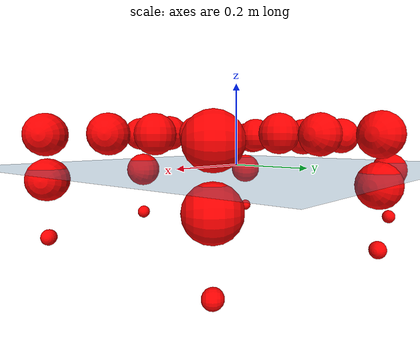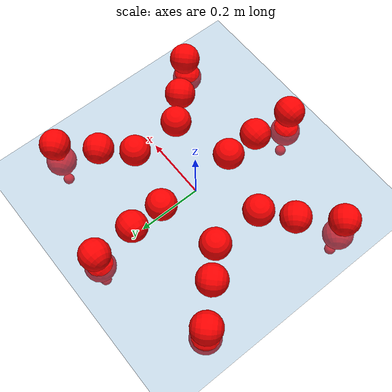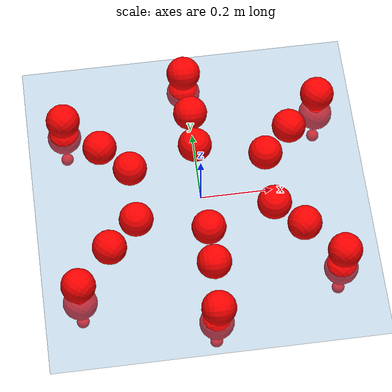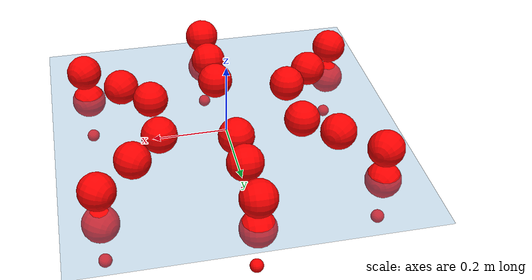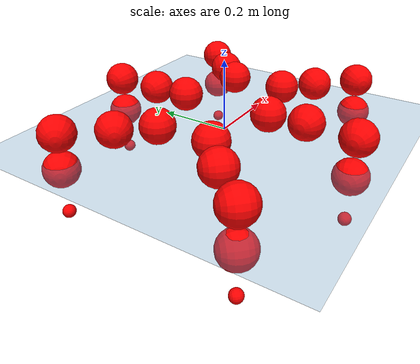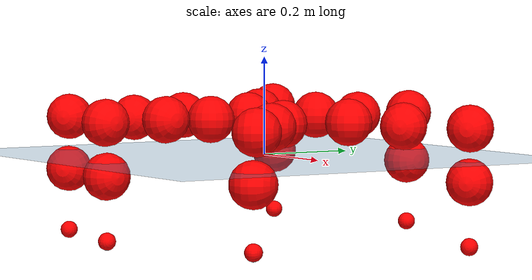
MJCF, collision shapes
<mujoco model="Golem">
  <compiler angle="radian" assetdir="assets" balanceinertia="true" inertiafromgeom="false"/>

  <option timestep="0.005" density="1.2" viscosity="2e-05"/>

  <size nkey="1"/>

  <visual>
    <quality shadowsize="8192"/>
    <map shadowclip="0.5"/>
  </visual>

  <default>
    <default class="/">
      <joint armature="0.01" damping="0.01" frictionloss="0.01"/>
      <geom contype="0" conaffinity="0" group="1" solref="-1000 -80"/>
      <site size="0.01 0.005 0.005" group="5"/>
      <general forcelimited="true" biastype="affine" gainprm="25" biasprm="0 -25 -0.5"/>
      <default class="visual">
        <geom type="mesh" group="2"/>
      </default>
      <default class="collision">
        <geom group="3"/>
      </default>
      <default class="foot">
        <geom size="0.01 0 0" condim="6" group="4" priority="1" solimp="0.015 1 0.01"/>
      </default>
      <default class="reward_collision_sphere">
        <geom group="5" rgba="1 0 0 1"/>
      </default>
    </default>
  </default>

  <asset>
    <texture type="skybox" colorspace="auto" name="//unnamed_texture_0" builtin="gradient" rgb1="0.95 0.95 0.95" rgb2="0.95 0.95 0.95" width="100" height="600"/>
    <texture type="2d" colorspace="auto" name="texplane" builtin="checker" rgb1="0.345 0.575 0.748" rgb2="0.345 0.575 0.748" markrgb="1 1 1" width="512" height="512"/>
    <material name="MatPlane" class="/" texture="texplane" texuniform="true" texrepeat="2 2" specular="0.9"/>
    <mesh name="body" class="/" file="body.stl" scale="0.001 0.001 0.001"/>
    <mesh name="coxa" class="/" file="coxa.stl" scale="0.001 0.001 0.001"/>
    <mesh name="femur" class="/" file="femur.stl" scale="0.001 0.001 0.001"/>
    <mesh name="tibia" class="/" file="tibia.stl" scale="0.001 0.001 0.001"/>
    <mesh name="tarsus" class="/" file="tarsus.stl" scale="0.001 0.001 0.001"/>
  </asset>

  <worldbody>
    <geom name="floor" class="/" size="100 100 0.125" type="plane" group="0" material="MatPlane"/>
    <light name="toplight_shadow" class="/" pos="0 0 5" dir="0.0990148 0.0990148 -0.990148" type="directional" ambient="0.04 0.04 0.04" diffuse="0.55 0.55 0.55" specular="0.12 0.12 0.12"/>
    <light name="toplight_fill" class="/" pos="0 0 5" dir="0.0990148 0.0990148 -0.990148" type="directional" castshadow="false" ambient="0.04 0.04 0.04" diffuse="0.3 0.3 0.3" specular="0.08 0.08 0.08"/>
    <body name="trunk" pos="0.00117463 -0.000667101 -0.000358553" quat="0.999999 -0.00047496 -0.00111969 -6.32502e-06">
      <inertial pos="-0.00214381 -0.00231148 0.00392529" quat="0.999743 0.0186852 -0.00124592 0.0127549" mass="6.09426" diaginertia="0.0241324 0.0305174 0.0173339"/>
      <joint name="//unnamed_joint_0" type="free"/>
      <geom name="//unnamed_geom_1" class="/" pos="0 0 0.0718637" quat="1 0 0 0" type="mesh" rgba="0.9 0.9 0.9 1" mesh="body"/>
      <site name="imu" class="/" pos="0.160231 -0.00906236 0.10896" size="0.0119082"/>
      <camera name="track" class="/" pos="0 -2.49541 0" quat="0.707107 0.707107 0 0" mode="trackcom"/>
      <camera name="ego_camera" class="/" pos="0.156247 0 0.112287" quat="-0.5 -0.5 0.5 0.5"/>
      <body name="coxa_RR" pos="-0.214462 -0.106085 0.0745647" quat="0.382663 3.12266e-05 -0.000174066 -0.923888">
        <inertial pos="-0.00131086 -0.000819466 -0.000967968" quat="0.999993 0.00197123 -0.00291341 -0.000911114" mass="0.343644" diaginertia="0.0246114 0.0306127 0.0182409"/>
        <joint name="coxa_joint_RR" class="/" pos="0 0 0" axis="-0.000703071 -0.00262493 -0.999996" range="-3.15839 3.04955" armature="0.0114121" damping="0" frictionloss="0.0119623"/>
        <geom name="//unnamed_geom_2" class="/" type="mesh" rgba="0.2 0.2 0.2 1" mesh="coxa"/>
        <geom name="//unnamed_geom_3" class="reward_collision_sphere" size="0.0476329" pos="-0.0360569 0 0"/>
        <body name="femur_RR" pos="0.07147 -0.0064719 -0.00651191" quat="0.500219 -0.500811 0.500141 0.498827">
          <inertial pos="-0.00151109 -0.00437381 -0.00574982" quat="0.999926 0.00651642 -0.0101888 -0.00115779" mass="0.337997" diaginertia="0.0247847 0.0312432 0.0170763"/>
          <joint name="femur_joint_RR" class="/" pos="0 0 0" axis="0.0124071 -0.00387052 -0.999916" range="-3.08944 3.14116" armature="0.0130829" damping="0.00599916" frictionloss="0.00840189"/>
          <geom name="//unnamed_geom_4" class="/" type="mesh" rgba="0.9 0.9 0.9 1" mesh="femur"/>
          <geom name="//unnamed_geom_5" class="reward_collision_sphere" size="0.0476329"/>
          <body name="tibia_RR" pos="-0.000357979 -0.139787 0.00614557" quat="-0.000135074 0.999999 0.00088602 -0.000449898">
            <inertial pos="7.11367e-06 0.00523655 -0.00248689" quat="0.999947 -0.00842185 -3.38017e-06 0.00593739" mass="0.338397" diaginertia="0.0253107 0.0300495 0.0176232"/>
            <joint name="tibia_joint_RR" class="/" pos="0 0 0" axis="0.00083786 0.00159404 0.999998" stiffness="0.00789612" range="-3.13726 3.14234" armature="0.0131651" damping="0" frictionloss="0.0122985"/>
            <geom name="//unnamed_geom_6" class="/" type="mesh" rgba="0.2 0.2 0.2 1" mesh="tibia"/>
            <geom name="//unnamed_geom_7" class="reward_collision_sphere" size="0.0476329"/>
            <body name="tarsus_RR" pos="0.109839 0.00170934 0.000179104" quat="0.999999 0.000522886 0.000284873 0.000994758">
              <inertial pos="0.0728758 0.00341513 -0.00126283" quat="0.500009 0.499988 0.500015 0.499987" mass="0.336423" diaginertia="0.0242527 0.0299601 0.01875"/>
              <joint name="tarsus_joint_RR" class="/" pos="0 0 0" axis="-0.00114046 0.012651 0.999919" range="-3.02697 3.01686" armature="0.0129407" damping="0" frictionloss="0.012272"/>
              <geom name="//unnamed_geom_8" class="/" type="mesh" rgba="0.9 0.9 0.9 1" mesh="tarsus"/>
              <geom name="foot_1" class="foot" size="0.0114823" pos="0.134612 0 0" quat="0 -0.707107 0 0.707107"/>
              <geom name="//unnamed_geom_10" class="reward_collision_sphere" size="0.0476329"/>
              <geom name="//unnamed_geom_11" class="reward_collision_sphere" size="0.0178624" pos="0.129204 0 0"/>
              <site name="foot_1" class="foot" pos="0.134612 0 0" quat="0 -0.707107 0 0.707107" size="0.0119082"/>
            </body>
          </body>
        </body>
      </body>
      <body name="coxa_RM" pos="0.00426463 -0.166158 0.0768238" quat="0.707224 0.000338004 -0.000141403 -0.706989">
        <inertial pos="0.00200057 0.000240905 0.00147601" quat="0.999656 -0.00772798 0.0185087 0.0168827" mass="0.33581" diaginertia="0.0248806 0.0301802 0.0171195"/>
        <joint name="coxa_joint_RM" class="/" pos="0 0 0" axis="0.0117113 -0.00138867 -0.99993" range="-3.18615 3.18656" armature="0.0115352" damping="0.0254375" frictionloss="0.0105512"/>
        <geom name="//unnamed_geom_12" class="/" type="mesh" rgba="0.2 0.2 0.2 1" mesh="coxa"/>
        <geom name="//unnamed_geom_13" class="reward_collision_sphere" size="0.0476329" pos="-0.0360569 0 0"/>
        <body name="femur_RM" pos="0.0698212 0.000789515 0.00289096" quat="0.498997 -0.501065 0.498907 0.501027">
          <inertial pos="0.00464465 -4.49121e-05 0.00591499" quat="0.999942 -0.00952929 -0.00481937 0.0015547" mass="0.325165" diaginertia="0.0244251 0.0301909 0.0180667"/>
          <joint name="femur_joint_RM" class="/" pos="0 0 0" axis="-0.00159986 0.000658018 -0.999999" stiffness="0.00178002" range="-3.09379 3.05225" armature="0.0128091" damping="0.0270508" frictionloss="0.0141595"/>
          <geom name="//unnamed_geom_14" class="/" type="mesh" rgba="0.9 0.9 0.9 1" mesh="femur"/>
          <geom name="//unnamed_geom_15" class="reward_collision_sphere" size="0.0476329"/>
          <body name="tibia_RM" pos="0.00191727 -0.134811 -0.00583414" quat="-0.000178487 1 -0.000125514 -0.000154882">
            <inertial pos="0.00198205 0.00242764 -0.001754" quat="0.999998 0.000228773 -0.00104003 0.00166817" mass="0.351307" diaginertia="0.0251325 0.0307166 0.0186874"/>
            <joint name="tibia_joint_RM" class="/" pos="0 0 0" axis="0.0166517 0.0145366 0.999756" range="-3.10976 3.20509" armature="0.0104441" damping="0.00588012" frictionloss="0.0124544"/>
            <geom name="//unnamed_geom_16" class="/" type="mesh" rgba="0.2 0.2 0.2 1" mesh="tibia"/>
            <geom name="//unnamed_geom_17" class="reward_collision_sphere" size="0.0476329"/>
            <body name="tarsus_RM" pos="0.10728 -0.00464727 0.00440047" quat="0.999999 0.000984618 -0.000749159 -0.000239575">
              <inertial pos="0.0698196 0.000395493 -0.00108479" quat="0.505337 0.503766 0.498039 0.492759" mass="0.344678" diaginertia="0.0254426 0.0310147 0.0194983"/>
              <joint name="tarsus_joint_RM" class="/" pos="0 0 0" axis="-0.00723632 -0.000286651 0.999974" range="-3.0698 3.23835" armature="0.0122804" damping="0.00041356" frictionloss="0.0105463"/>
              <geom name="//unnamed_geom_18" class="/" type="mesh" rgba="0.9 0.9 0.9 1" mesh="tarsus"/>
              <geom name="foot_2" class="foot" size="0.012688" pos="0.134612 0 0" quat="0 -0.707107 0 0.707107"/>
              <geom name="//unnamed_geom_20" class="reward_collision_sphere" size="0.0476329"/>
              <geom name="//unnamed_geom_21" class="reward_collision_sphere" size="0.0178624" pos="0.129204 0 0"/>
              <site name="foot_2" class="foot" pos="0.134612 0 0" quat="0 -0.707107 0 0.707107" size="0.0119082"/>
            </body>
          </body>
        </body>
      </body>
      <body name="coxa_RF" pos="0.217505 -0.102701 0.0754184" quat="0.923874 -1.3766e-05 1.10503e-05 -0.382697">
        <inertial pos="0.00171078 0.00666234 0.00237155" quat="0.999946 -0.00987359 0.0031888 0.000624204" mass="0.327872" diaginertia="0.0244566 0.0311062 0.0183585"/>
        <joint name="coxa_joint_RF" class="/" pos="0 0 0" axis="0.00909947 -0.00204509 -0.999957" range="-3.13643 3.10973" armature="0.0107062" damping="0.0163626" frictionloss="0.0121433"/>
        <geom name="//unnamed_geom_22" class="/" type="mesh" rgba="0.2 0.2 0.2 1" mesh="coxa"/>
        <geom name="//unnamed_geom_23" class="reward_collision_sphere" size="0.0476329" pos="-0.0360569 0 0"/>
        <body name="femur_RF" pos="0.0663901 -0.000212058 7.53565e-05" quat="0.50025 -0.499541 0.499796 0.500413">
          <inertial pos="0.00268916 0.0001311 -0.00242031" quat="0.999941 0.00566223 -0.00287317 0.00885416" mass="0.346144" diaginertia="0.024862 0.0324661 0.0176385"/>
          <joint name="femur_joint_RF" class="/" pos="0 0 0" axis="0.000424764 -0.00163998 -0.999999" range="-3.22735 3.18454" armature="0.0114698" damping="0.00960385" frictionloss="0.0129849"/>
          <geom name="//unnamed_geom_24" class="/" type="mesh" rgba="0.9 0.9 0.9 1" mesh="femur"/>
          <geom name="//unnamed_geom_25" class="reward_collision_sphere" size="0.0476329"/>
          <body name="tibia_RF" pos="0.00167724 -0.134479 0.0008441" quat="-1.234e-05 1 -1.42836e-05 -2.03334e-05">
            <inertial pos="-0.0012126 -0.000443212 -0.000282447" quat="0.999654 0.00197779 0.0252232 -0.00718918" mass="0.318" diaginertia="0.0256683 0.0300306 0.0176455"/>
            <joint name="tibia_joint_RF" class="/" pos="0 0 0" axis="-0.00146106 -0.0112098 0.999936" range="-3.14471 3.13508" armature="0.0133791" damping="0" frictionloss="0.0108312"/>
            <geom name="//unnamed_geom_26" class="/" type="mesh" rgba="0.2 0.2 0.2 1" mesh="tibia"/>
            <geom name="//unnamed_geom_27" class="reward_collision_sphere" size="0.0476329"/>
            <body name="tarsus_RF" pos="0.0999398 -0.000287439 0.00670922" quat="1 6.45586e-06 -1.1979e-06 -3.80912e-06">
              <inertial pos="0.073607 0.00342186 0.00177125" quat="0.504147 0.493487 0.497319 0.504956" mass="0.356874" diaginertia="0.0246852 0.0310541 0.0178277"/>
              <joint name="tarsus_joint_RF" class="/" pos="0 0 0" axis="-0.00930271 -0.0102644 0.999904" range="-3.0988 3.13496" armature="0.0120977" damping="0" frictionloss="0.010678"/>
              <geom name="//unnamed_geom_28" class="/" type="mesh" rgba="0.9 0.9 0.9 1" mesh="tarsus"/>
              <geom name="foot_3" class="foot" size="0.0128539" pos="0.134612 0 0" quat="0 -0.707107 0 0.707107"/>
              <geom name="//unnamed_geom_30" class="reward_collision_sphere" size="0.0476329"/>
              <geom name="//unnamed_geom_31" class="reward_collision_sphere" size="0.0178624" pos="0.129204 0 0"/>
              <site name="foot_3" class="foot" pos="0.134612 0 0" quat="0 -0.707107 0 0.707107" size="0.0119082"/>
            </body>
          </body>
        </body>
      </body>
      <body name="coxa_LR" pos="-0.21446 0.105485 0.0701313" quat="0.382907 0.000117635 2.45504e-05 0.923787">
        <inertial pos="-0.00188606 -0.00220984 -0.00312007" quat="0.99995 -0.00588149 0.000241884 0.00804532" mass="0.335743" diaginertia="0.025375 0.0302455 0.0193302"/>
        <joint name="coxa_joint_LR" class="/" pos="0 0 0" axis="0.0130267 -0.0110413 -0.999854" stiffness="0.00833349" range="-3.15226 3.17398" armature="0.0111087" damping="0.0394908" frictionloss="0.0147203"/>
        <geom name="//unnamed_geom_32" class="/" type="mesh" rgba="0.2 0.2 0.2 1" mesh="coxa"/>
        <geom name="//unnamed_geom_33" class="reward_collision_sphere" size="0.0476329" pos="-0.0360569 0 0"/>
        <body name="femur_LR" pos="0.0706205 0.00135387 0.00286217" quat="0.500988 -0.499572 0.50027 0.499168">
          <inertial pos="-0.00381638 -0.00116929 -0.00168008" quat="0.999965 -0.00798109 -0.00194407 -0.0015913" mass="0.363912" diaginertia="0.0245519 0.0299129 0.0173457"/>
          <joint name="femur_joint_LR" class="/" pos="0 0 0" axis="0.00790164 0.00453366 0.999959" stiffness="0.00657554" range="-3.0256 3.22526" armature="0.0145889" damping="0.0173114" frictionloss="0.0120305"/>
          <geom name="//unnamed_geom_34" class="/" type="mesh" rgba="0.9 0.9 0.9 1" mesh="femur"/>
          <geom name="//unnamed_geom_35" class="reward_collision_sphere" size="0.0476329"/>
          <body name="tibia_LR" pos="-0.00460021 -0.133793 -0.000866097" quat="8.43029e-05 1 -0.00010188 -5.76017e-05">
            <inertial pos="0.000271765 0.00218693 0.0016449" quat="0.999992 0.0028469 -0.000998418 -0.00262548" mass="0.325082" diaginertia="0.0256013 0.0288434 0.0178544"/>
            <joint name="tibia_joint_LR" class="/" pos="0 0 0" axis="-0.0103152 0.0142575 -0.999845" stiffness="0.00185083" range="-3.08953 3.20042" armature="0.0109488" damping="0" frictionloss="0.0117181"/>
            <geom name="//unnamed_geom_36" class="/" type="mesh" rgba="0.2 0.2 0.2 1" mesh="tibia"/>
            <geom name="//unnamed_geom_37" class="reward_collision_sphere" size="0.0476329"/>
            <body name="tarsus_LR" pos="0.100008 0.00407883 0.00104698" quat="0.999998 0.00195514 0.000263319 0.00102699">
              <inertial pos="0.0751626 0.00272447 -0.00238912" quat="0.499244 0.499812 0.500669 0.500274" mass="0.334953" diaginertia="0.0244967 0.0309167 0.0173746"/>
              <joint name="tarsus_joint_LR" class="/" pos="0 0 0" axis="0.000322944 -0.000175338 -1" stiffness="0.00614087" range="-3.15595 3.16698" armature="0.0126023" damping="0.0381286" frictionloss="0.00967853"/>
              <geom name="//unnamed_geom_38" class="/" type="mesh" rgba="0.9 0.9 0.9 1" mesh="tarsus"/>
              <geom name="foot_4" class="foot" size="0.0127807" pos="0.134612 0 0" quat="0.707107 0 -0.707107 0"/>
              <geom name="//unnamed_geom_40" class="reward_collision_sphere" size="0.0476329"/>
              <geom name="//unnamed_geom_41" class="reward_collision_sphere" size="0.0178624" pos="0.129204 0 0"/>
              <site name="foot_4" class="foot" pos="0.134612 0 0" quat="0.707107 0 -0.707107 0" size="0.0119082"/>
            </body>
          </body>
        </body>
      </body>
      <body name="coxa_LM" pos="-0.00182849 0.163331 0.0777905" quat="0.70709 -0.000168629 0.000168843 0.707124">
        <inertial pos="-0.0034685 -0.000581434 0.00210923" quat="0.999965 0.00383025 0.00711124 0.00235334" mass="0.353683" diaginertia="0.0241208 0.0316153 0.0180864"/>
        <joint name="coxa_joint_LM" class="/" pos="0 0 0" axis="-0.00921761 -0.00116427 -0.999957" range="-3.09431 3.14657" armature="0.0122261" damping="0.00551947" frictionloss="0.0121691"/>
        <geom name="//unnamed_geom_42" class="/" type="mesh" rgba="0.2 0.2 0.2 1" mesh="coxa"/>
        <geom name="//unnamed_geom_43" class="reward_collision_sphere" size="0.0476329" pos="-0.0360569 0 0"/>
        <body name="femur_LM" pos="0.0687058 5.67594e-05 -0.00243466" quat="0.499999 -0.5 0.5 0.500001">
          <inertial pos="-0.000869761 -0.00102534 -0.000200866" quat="0.999954 0.00743546 -0.00570967 0.00217719" mass="0.325351" diaginertia="0.0266332 0.0290712 0.0168432"/>
          <joint name="femur_joint_LM" class="/" pos="0 0 0" axis="-0.0246047 0.00105259 0.999697" stiffness="0.0111224" range="-3.23084 3.12243" armature="0.0102627" damping="0.0417189" frictionloss="0.0120423"/>
          <geom name="//unnamed_geom_44" class="/" type="mesh" rgba="0.9 0.9 0.9 1" mesh="femur"/>
          <geom name="//unnamed_geom_45" class="reward_collision_sphere" size="0.0476329"/>
          <body name="tibia_LM" pos="0.000110732 -0.131624 0.00302639" quat="-0.000135251 1 0.000196026 -0.000741643">
            <inertial pos="0.00456978 0.000323202 0.000231282" quat="0.999955 0.00152187 -0.00127828 -0.00931955" mass="0.354914" diaginertia="0.025832 0.0312435 0.0181711"/>
            <joint name="tibia_joint_LM" class="/" pos="0 0 0" axis="0.000399071 0.000340708 -1" range="-3.09562 3.12221" armature="0.0127512" damping="0" frictionloss="0.0157673"/>
            <geom name="//unnamed_geom_46" class="/" type="mesh" rgba="0.2 0.2 0.2 1" mesh="tibia"/>
            <geom name="//unnamed_geom_47" class="reward_collision_sphere" size="0.0476329"/>
            <body name="tarsus_LM" pos="0.101155 -0.00261781 -0.00214021" quat="0.999999 -0.00037358 0.000990416 -0.000188051">
              <inertial pos="0.0745902 0.000962483 0.00070194" quat="0.491419 0.503 0.494249 0.511093" mass="0.344435" diaginertia="0.025867 0.0302051 0.0183345"/>
              <joint name="tarsus_joint_LM" class="/" pos="0 0 0" axis="0.0127952 0.00806932 -0.999886" range="-3.17998 3.14058" armature="0.0130677" damping="0" frictionloss="0.013097"/>
              <geom name="//unnamed_geom_48" class="/" type="mesh" rgba="0.9 0.9 0.9 1" mesh="tarsus"/>
              <geom name="foot_5" class="foot" size="0.00899836" pos="0.134612 0 0" quat="0.707107 0 -0.707107 0"/>
              <geom name="//unnamed_geom_50" class="reward_collision_sphere" size="0.0476329"/>
              <geom name="//unnamed_geom_51" class="reward_collision_sphere" size="0.0178624" pos="0.129204 0 0"/>
              <site name="foot_5" class="foot" pos="0.134612 0 0" quat="0.707107 0 -0.707107 0" size="0.0119082"/>
            </body>
          </body>
        </body>
      </body>
      <body name="coxa_LF" pos="0.215054 0.105721 0.0735705" quat="0.923931 0.000541138 0.000269358 0.382558">
        <inertial pos="-1.10329e-05 0.00563277 0.000720777" quat="0.999826 -0.0167698 -0.00227091 0.00784048" mass="0.320363" diaginertia="0.0229111 0.0271018 0.0159909"/>
        <joint name="coxa_joint_LF" class="/" pos="0 0 0" axis="0.00135368 -0.00317168 -0.999994" stiffness="0.00785248" range="-3.17412 3.12781" armature="0.0121323" damping="0" frictionloss="0.013607"/>
        <geom name="//unnamed_geom_52" class="/" type="mesh" rgba="0.2 0.2 0.2 1" mesh="coxa"/>
        <geom name="//unnamed_geom_53" class="reward_collision_sphere" size="0.0476329" pos="-0.0360569 0 0"/>
        <body name="femur_LF" pos="0.0754683 0.00139784 -0.00617163" quat="0.499501 -0.500641 0.500175 0.499683">
          <inertial pos="-0.000905519 -0.000864511 0.0035617" quat="0.999932 0.00720532 0.00876999 -0.00262651" mass="0.333943" diaginertia="0.0255394 0.030448 0.0182504"/>
          <joint name="femur_joint_LF" class="/" pos="0 0 0" axis="0.00211283 -0.0114645 0.999932" stiffness="0.0349004" range="-3.18603 3.13689" armature="0.0114091" damping="0.0232038" frictionloss="0.011649"/>
          <geom name="//unnamed_geom_54" class="/" type="mesh" rgba="0.9 0.9 0.9 1" mesh="femur"/>
          <geom name="//unnamed_geom_55" class="reward_collision_sphere" size="0.0476329"/>
          <body name="tibia_LF" pos="0.00314823 -0.134381 -0.000107121" quat="5.57905e-05 1 -0.000352299 0.000261067">
            <inertial pos="-0.00454103 -0.00453729 -0.00604653" quat="0.999959 -0.000775078 0.0026781 -0.00863235" mass="0.341623" diaginertia="0.0258196 0.0302308 0.0166849"/>
            <joint name="tibia_joint_LF" class="/" pos="0 0 0" axis="0.00310917 -0.00492732 -0.999983" range="-3.1638 3.22923" armature="0.0104564" damping="0.0122831" frictionloss="0.0123644"/>
            <geom name="//unnamed_geom_56" class="/" type="mesh" rgba="0.2 0.2 0.2 1" mesh="tibia"/>
            <geom name="//unnamed_geom_57" class="reward_collision_sphere" size="0.0476329"/>
            <body name="tarsus_LF" pos="0.10712 -0.00101844 0.00115003" quat="1 0.000297434 -9.36316e-05 -0.000288696">
              <inertial pos="0.0731867 -0.00150691 -0.00448052" quat="0.496234 0.502392 0.491193 0.509984" mass="0.344295" diaginertia="0.0241278 0.0302298 0.016678"/>
              <joint name="tarsus_joint_LF" class="/" pos="0 0 0" axis="0.000802258 -0.00340858 -0.999994" range="-3.07882 3.23614" armature="0.0119257" damping="0.028274" frictionloss="0.0118898"/>
              <geom name="//unnamed_geom_58" class="/" type="mesh" rgba="0.9 0.9 0.9 1" mesh="tarsus"/>
              <geom name="foot_6" class="foot" size="0.0114641" pos="0.134612 0 0" quat="0.707107 0 -0.707107 0"/>
              <geom name="//unnamed_geom_60" class="reward_collision_sphere" size="0.0476329"/>
              <geom name="//unnamed_geom_61" class="reward_collision_sphere" size="0.0178624" pos="0.129204 0 0"/>
              <site name="foot_6" class="foot" pos="0.134612 0 0" quat="0.707107 0 -0.707107 0" size="0.0119082"/>
            </body>
          </body>
        </body>
      </body>
    </body>
  </worldbody>

  <contact>
    <pair class="/" geom1="floor" geom2="foot_1" name="//unnamed_contact_0"/>
    <pair class="/" geom1="floor" geom2="foot_2" name="//unnamed_contact_1"/>
    <pair class="/" geom1="floor" geom2="foot_3" name="//unnamed_contact_2"/>
    <pair class="/" geom1="floor" geom2="foot_4" name="//unnamed_contact_3"/>
    <pair class="/" geom1="floor" geom2="foot_5" name="//unnamed_contact_4"/>
    <pair class="/" geom1="floor" geom2="foot_6" name="//unnamed_contact_5"/>
  </contact>

  <actuator>
    <general name="coxa_joint_RR" class="/" joint="coxa_joint_RR" forcerange="-7.91897 7.91897" gainprm="25.2002" biasprm="0 -25.2002 -0.585891"/>
    <general name="femur_joint_RR" class="/" joint="femur_joint_RR" forcerange="-8.66286 8.66286" gainprm="25.2002" biasprm="0 -25.2002 -0.585891"/>
    <general name="tibia_joint_RR" class="/" joint="tibia_joint_RR" forcerange="-8.80015 8.80015" gainprm="25.2002" biasprm="0 -25.2002 -0.585891"/>
    <general name="tarsus_joint_RR" class="/" joint="tarsus_joint_RR" forcerange="-9.30971 9.30971" gainprm="25.2002" biasprm="0 -25.2002 -0.585891"/>
    <general name="coxa_joint_RM" class="/" joint="coxa_joint_RM" forcerange="-8.10008 8.10008" gainprm="25.2002" biasprm="0 -25.2002 -0.585891"/>
    <general name="femur_joint_RM" class="/" joint="femur_joint_RM" forcerange="-8.66991 8.66991" gainprm="25.2002" biasprm="0 -25.2002 -0.585891"/>
    <general name="tibia_joint_RM" class="/" joint="tibia_joint_RM" forcerange="-8.85576 8.85576" gainprm="25.2002" biasprm="0 -25.2002 -0.585891"/>
    <general name="tarsus_joint_RM" class="/" joint="tarsus_joint_RM" forcerange="-9.34242 9.34242" gainprm="25.2002" biasprm="0 -25.2002 -0.585891"/>
    <general name="coxa_joint_RF" class="/" joint="coxa_joint_RF" forcerange="-8.1446 8.1446" gainprm="25.2002" biasprm="0 -25.2002 -0.585891"/>
    <general name="femur_joint_RF" class="/" joint="femur_joint_RF" forcerange="-8.64493 8.64493" gainprm="25.2002" biasprm="0 -25.2002 -0.585891"/>
    <general name="tibia_joint_RF" class="/" joint="tibia_joint_RF" forcerange="-8.69976 8.69976" gainprm="25.2002" biasprm="0 -25.2002 -0.585891"/>
    <general name="tarsus_joint_RF" class="/" joint="tarsus_joint_RF" forcerange="-7.94956 7.94956" gainprm="25.2002" biasprm="0 -25.2002 -0.585891"/>
    <general name="coxa_joint_LR" class="/" joint="coxa_joint_LR" forcerange="-8.13578 8.13578" gainprm="25.2002" biasprm="0 -25.2002 -0.585891"/>
    <general name="femur_joint_LR" class="/" joint="femur_joint_LR" forcerange="-9.73149 9.73149" gainprm="25.2002" biasprm="0 -25.2002 -0.585891"/>
    <general name="tibia_joint_LR" class="/" joint="tibia_joint_LR" forcerange="-9.48228 9.48228" gainprm="25.2002" biasprm="0 -25.2002 -0.585891"/>
    <general name="tarsus_joint_LR" class="/" joint="tarsus_joint_LR" forcerange="-8.80627 8.80627" gainprm="25.2002" biasprm="0 -25.2002 -0.585891"/>
    <general name="coxa_joint_LM" class="/" joint="coxa_joint_LM" forcerange="-8.63543 8.63543" gainprm="25.2002" biasprm="0 -25.2002 -0.585891"/>
    <general name="femur_joint_LM" class="/" joint="femur_joint_LM" forcerange="-8.47979 8.47979" gainprm="25.2002" biasprm="0 -25.2002 -0.585891"/>
    <general name="tibia_joint_LM" class="/" joint="tibia_joint_LM" forcerange="-8.75747 8.75747" gainprm="25.2002" biasprm="0 -25.2002 -0.585891"/>
    <general name="tarsus_joint_LM" class="/" joint="tarsus_joint_LM" forcerange="-8.62392 8.62392" gainprm="25.2002" biasprm="0 -25.2002 -0.585891"/>
    <general name="coxa_joint_LF" class="/" joint="coxa_joint_LF" forcerange="-8.04075 8.04075" gainprm="25.2002" biasprm="0 -25.2002 -0.585891"/>
    <general name="femur_joint_LF" class="/" joint="femur_joint_LF" forcerange="-8.14977 8.14977" gainprm="25.2002" biasprm="0 -25.2002 -0.585891"/>
    <general name="tibia_joint_LF" class="/" joint="tibia_joint_LF" forcerange="-8.58184 8.58184" gainprm="25.2002" biasprm="0 -25.2002 -0.585891"/>
    <general name="tarsus_joint_LF" class="/" joint="tarsus_joint_LF" forcerange="-10.7636 10.7636" gainprm="25.2002" biasprm="0 -25.2002 -0.585891"/>
  </actuator>

  <sensor>
    <gyro site="imu" name="imu_angular_velocity"/>
    <velocimeter site="imu" name="imu_linear_velocity"/>
    <framelinvel objtype="site" objname="foot_1" name="foot_1_global_linear_velocity"/>
    <framelinvel objtype="site" objname="foot_2" name="foot_2_global_linear_velocity"/>
    <framelinvel objtype="site" objname="foot_3" name="foot_3_global_linear_velocity"/>
    <framelinvel objtype="site" objname="foot_4" name="foot_4_global_linear_velocity"/>
    <framelinvel objtype="site" objname="foot_5" name="foot_5_global_linear_velocity"/>
    <framelinvel objtype="site" objname="foot_6" name="foot_6_global_linear_velocity"/>
  </sensor>

  <keyframe>
    <key name="home" qpos="0 0 0.1457 1 0 0 0 0 0 0 0 0 0 0 0 0 0 0 0 0 0 0 0 0 0 0 0 0 0 0 0"/>
  </keyframe>
</mujoco>
